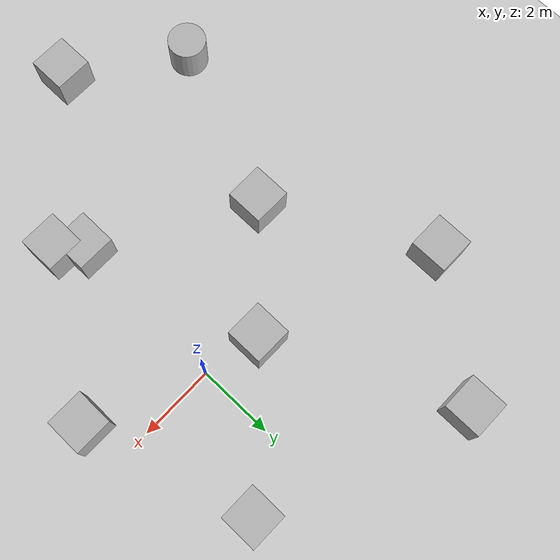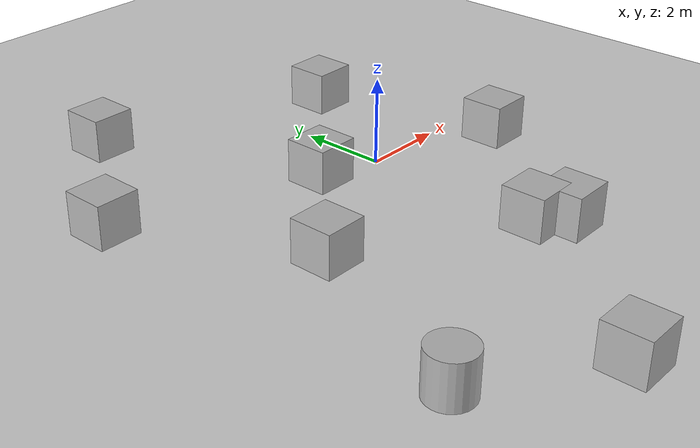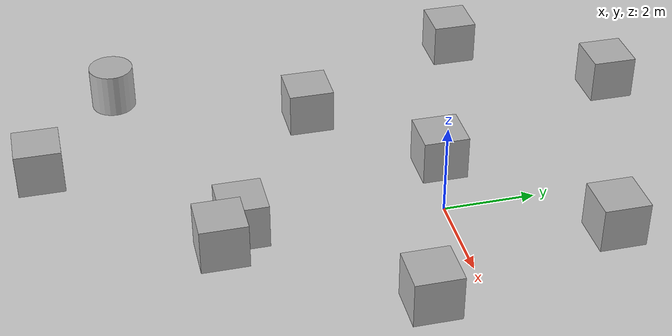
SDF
<sdf version='1.10'>
  <world name='empty'>
    <physics name='1ms' type='ignored'>
      <max_step_size>0.001</max_step_size>
      <real_time_factor>1</real_time_factor>
      <real_time_update_rate>1000</real_time_update_rate>
    </physics>
    <plugin
      filename="gz-sim-sensors-system"
      name="gz::sim::systems::Sensors">
      <render_engine>ogre2</render_engine>
    </plugin>
    <plugin name='gz::sim::systems::Physics' filename='gz-sim-physics-system'/>
    <plugin name='gz::sim::systems::UserCommands' filename='gz-sim-user-commands-system'/>
    <plugin name='gz::sim::systems::SceneBroadcaster' filename='gz-sim-scene-broadcaster-system'/>
    <plugin name='gz::sim::systems::Contact' filename='gz-sim-contact-system'/>
    <gravity>0 0 -9.8000000000000007</gravity>
    <magnetic_field>5.5644999999999998e-06 2.2875799999999999e-05 -4.2388400000000002e-05</magnetic_field>
    <atmosphere type='adiabatic'/>
    <scene>
      <ambient>0.400000006 0.400000006 0.400000006 1</ambient>
      <background>0.699999988 0.699999988 0.699999988 1</background>
      <shadows>true</shadows>
    </scene>
    <model name='ground_plane'>
      <static>true</static>
      <link name='link'>
        <collision name='collision'>
          <geometry>
            <plane>
              <normal>0 0 1</normal>
              <size>100 100</size>
            </plane>
          </geometry>
          <surface>
            <friction>
              <ode/>
            </friction>
            <bounce/>
            <contact/>
          </surface>
        </collision>
        <visual name='visual'>
          <geometry>
            <plane>
              <normal>0 0 1</normal>
              <size>100 100</size>
            </plane>
          </geometry>
          <material>
            <ambient>0.800000012 0.800000012 0.800000012 1</ambient>
            <diffuse>0.800000012 0.800000012 0.800000012 1</diffuse>
            <specular>0.800000012 0.800000012 0.800000012 1</specular>
          </material>
        </visual>
        <pose>0 0 0 0 0 0</pose>
        <inertial>
          <pose>0 0 0 0 0 0</pose>
          <mass>1</mass>
          <inertia>
            <ixx>1</ixx>
            <ixy>0</ixy>
            <ixz>0</ixz>
            <iyy>1</iyy>
            <iyz>0</iyz>
            <izz>1</izz>
          </inertia>
        </inertial>
        <enable_wind>false</enable_wind>
      </link>
      <pose>0 0 0 0 0 0</pose>
      <self_collide>false</self_collide>
    </model>
    <model name='box'>
      <pose>2.8759141512779642 -1.1564543887448879 0.5 0 0 0</pose>
      <link name='box_link'>
        <inertial>
          <inertia>
            <ixx>0.16666</ixx>
            <ixy>0</ixy>
            <ixz>0</ixz>
            <iyy>0.16666</iyy>
            <iyz>0</iyz>
            <izz>0.16666</izz>
          </inertia>
          <mass>1</mass>
          <pose>0 0 0 0 0 0</pose>
        </inertial>
        <collision name='box_collision'>
          <geometry>
            <box>
              <size>1 1 1</size>
            </box>
          </geometry>
          <surface>
            <friction>
              <ode/>
            </friction>
            <bounce/>
            <contact/>
          </surface>
        </collision>
        <visual name='box_visual'>
          <geometry>
            <box>
              <size>1 1 1</size>
            </box>
          </geometry>
          <material>
            <ambient>0.300000012 0.300000012 0.300000012 1</ambient>
            <diffuse>0.699999988 0.699999988 0.699999988 1</diffuse>
            <specular>1 1 1 1</specular>
          </material>
        </visual>
        <pose>0 0 0 0 0 0</pose>
        <enable_wind>false</enable_wind>
      </link>
      <static>false</static>
      <self_collide>false</self_collide>
    </model>
    <model name='box_0'>
      <pose>-0.13826763371025286 -4.2818056330233913 0.5 0 0 0</pose>
      <link name='box_link'>
        <inertial>
          <inertia>
            <ixx>0.16666</ixx>
            <ixy>0</ixy>
            <ixz>0</ixz>
            <iyy>0.16666</iyy>
            <iyz>0</iyz>
            <izz>0.16666</izz>
          </inertia>
          <mass>1</mass>
          <pose>0 0 0 0 0 0</pose>
        </inertial>
        <collision name='box_collision'>
          <geometry>
            <box>
              <size>1 1 1</size>
            </box>
          </geometry>
          <surface>
            <friction>
              <ode/>
            </friction>
            <bounce/>
            <contact/>
          </surface>
        </collision>
        <visual name='box_visual'>
          <geometry>
            <box>
              <size>1 1 1</size>
            </box>
          </geometry>
          <material>
            <ambient>0.300000012 0.300000012 0.300000012 1</ambient>
            <diffuse>0.699999988 0.699999988 0.699999988 1</diffuse>
            <specular>1 1 1 1</specular>
          </material>
        </visual>
        <pose>0 0 0 0 0 0</pose>
        <enable_wind>false</enable_wind>
      </link>
      <static>false</static>
      <self_collide>false</self_collide>
    </model>
    <model name='box_1'>
      <pose>1.6088577379175675 3.1472210934512894 0.5 0 0 0</pose>
      <link name='box_link'>
        <inertial>
          <inertia>
            <ixx>0.16666</ixx>
            <ixy>0</ixy>
            <ixz>0</ixz>
            <iyy>0.16666</iyy>
            <iyz>0</iyz>
            <izz>0.16666</izz>
          </inertia>
          <mass>1</mass>
          <pose>0 0 0 0 0 0</pose>
        </inertial>
        <collision name='box_collision'>
          <geometry>
            <box>
              <size>1 1 1</size>
            </box>
          </geometry>
          <surface>
            <friction>
              <ode/>
            </friction>
            <bounce/>
            <contact/>
          </surface>
        </collision>
        <visual name='box_visual'>
          <geometry>
            <box>
              <size>1 1 1</size>
            </box>
          </geometry>
          <material>
            <ambient>0.300000012 0.300000012 0.300000012 1</ambient>
            <diffuse>0.699999988 0.699999988 0.699999988 1</diffuse>
            <specular>1 1 1 1</specular>
          </material>
        </visual>
        <pose>0 0 0 0 0 0</pose>
        <enable_wind>false</enable_wind>
      </link>
      <static>false</static>
      <self_collide>false</self_collide>
    </model>
    <model name='box_2'>
      <pose>-3.001489901355793 -8.1729841114059916 0.5 0 0 0</pose>
      <link name='box_link'>
        <inertial>
          <inertia>
            <ixx>0.16666</ixx>
            <ixy>0</ixy>
            <ixz>0</ixz>
            <iyy>0.16666</iyy>
            <iyz>0</iyz>
            <izz>0.16666</izz>
          </inertia>
          <mass>1</mass>
          <pose>0 0 0 0 0 0</pose>
        </inertial>
        <collision name='box_collision'>
          <geometry>
            <box>
              <size>1 1 1</size>
            </box>
          </geometry>
          <surface>
            <friction>
              <ode/>
            </friction>
            <bounce/>
            <contact/>
          </surface>
        </collision>
        <visual name='box_visual'>
          <geometry>
            <box>
              <size>1 1 1</size>
            </box>
          </geometry>
          <material>
            <ambient>0.300000012 0.300000012 0.300000012 1</ambient>
            <diffuse>0.699999988 0.699999988 0.699999988 1</diffuse>
            <specular>1 1 1 1</specular>
          </material>
        </visual>
        <pose>0 0 0 0 0 0</pose>
        <enable_wind>false</enable_wind>
      </link>
      <static>false</static>
      <self_collide>false</self_collide>
    </model>
    <model name='box_3'>
      <pose>-3.9430426734323047 -2.0544102903357979 0.5 0 0 0</pose>
      <link name='box_link'>
        <inertial>
          <inertia>
            <ixx>0.16666</ixx>
            <ixy>0</ixy>
            <ixz>0</ixz>
            <iyy>0.16666</iyy>
            <iyz>0</iyz>
            <izz>0.16666</izz>
          </inertia>
          <mass>1</mass>
          <pose>0 0 0 0 0 0</pose>
        </inertial>
        <collision name='box_collision'>
          <geometry>
            <box>
              <size>1 1 1</size>
            </box>
          </geometry>
          <surface>
            <friction>
              <ode/>
            </friction>
            <bounce/>
            <contact/>
          </surface>
        </collision>
        <visual name='box_visual'>
          <geometry>
            <box>
              <size>1 1 1</size>
            </box>
          </geometry>
          <material>
            <ambient>0.300000012 0.300000012 0.300000012 1</ambient>
            <diffuse>0.699999988 0.699999988 0.699999988 1</diffuse>
            <specular>1 1 1 1</specular>
          </material>
        </visual>
        <pose>0 0 0 0 0 0</pose>
        <enable_wind>false</enable_wind>
      </link>
      <static>false</static>
      <self_collide>false</self_collide>
    </model>
    <model name='box_4'>
      <pose>0.39336888827032523 -4.7966736152993601 0.5 0 0 0</pose>
      <link name='box_link'>
        <inertial>
          <inertia>
            <ixx>0.16666</ixx>
            <ixy>0</ixy>
            <ixz>0</ixz>
            <iyy>0.16666</iyy>
            <iyz>0</iyz>
            <izz>0.16666</izz>
          </inertia>
          <mass>1</mass>
          <pose>0 0 0 0 0 0</pose>
        </inertial>
        <collision name='box_collision'>
          <geometry>
            <box>
              <size>1 1 1</size>
            </box>
          </geometry>
          <surface>
            <friction>
              <ode/>
            </friction>
            <bounce/>
            <contact/>
          </surface>
        </collision>
        <visual name='box_visual'>
          <geometry>
            <box>
              <size>1 1 1</size>
            </box>
          </geometry>
          <material>
            <ambient>0.300000012 0.300000012 0.300000012 1</ambient>
            <diffuse>0.699999988 0.699999988 0.699999988 1</diffuse>
            <specular>1 1 1 1</specular>
          </material>
        </visual>
        <pose>0 0 0 0 0 0</pose>
        <enable_wind>false</enable_wind>
      </link>
      <static>false</static>
      <self_collide>false</self_collide>
    </model>
    <model name='box_5'>
      <pose>-1.4704350042163632 0.340064528973687 0.5 0 0 0</pose>
      <link name='box_link'>
        <inertial>
          <inertia>
            <ixx>0.16666</ixx>
            <ixy>0</ixy>
            <ixz>0</ixz>
            <iyy>0.16666</iyy>
            <iyz>0</iyz>
            <izz>0.16666</izz>
          </inertia>
          <mass>1</mass>
          <pose>0 0 0 0 0 0</pose>
        </inertial>
        <collision name='box_collision'>
          <geometry>
            <box>
              <size>1 1 1</size>
            </box>
          </geometry>
          <surface>
            <friction>
              <ode/>
            </friction>
            <bounce/>
            <contact/>
          </surface>
        </collision>
        <visual name='box_visual'>
          <geometry>
            <box>
              <size>1 1 1</size>
            </box>
          </geometry>
          <material>
            <ambient>0.300000012 0.300000012 0.300000012 1</ambient>
            <diffuse>0.699999988 0.699999988 0.699999988 1</diffuse>
            <specular>1 1 1 1</specular>
          </material>
        </visual>
        <pose>0 0 0 0 0 0</pose>
        <enable_wind>false</enable_wind>
      </link>
      <static>false</static>
      <self_collide>false</self_collide>
    </model>
    <model name='box_6'>
      <pose>-6.119124422411808 1.9989719237809671 0.5 0 0 0</pose>
      <link name='box_link'>
        <inertial>
          <inertia>
            <ixx>0.16666</ixx>
            <ixy>0</ixy>
            <ixz>0</ixz>
            <iyy>0.16666</iyy>
            <iyz>0</iyz>
            <izz>0.16666</izz>
          </inertia>
          <mass>1</mass>
          <pose>0 0 0 0 0 0</pose>
        </inertial>
        <collision name='box_collision'>
          <geometry>
            <box>
              <size>1 1 1</size>
            </box>
          </geometry>
          <surface>
            <friction>
              <ode/>
            </friction>
            <bounce/>
            <contact/>
          </surface>
        </collision>
        <visual name='box_visual'>
          <geometry>
            <box>
              <size>1 1 1</size>
            </box>
          </geometry>
          <material>
            <ambient>0.300000012 0.300000012 0.300000012 1</ambient>
            <diffuse>0.699999988 0.699999988 0.699999988 1</diffuse>
            <specular>1 1 1 1</specular>
          </material>
        </visual>
        <pose>0 0 0 0 0 0</pose>
        <enable_wind>false</enable_wind>
      </link>
      <static>false</static>
      <self_collide>false</self_collide>
    </model>
    <model name='box_7'>
      <pose>-3.6952674334681728 5.1144238407926501 0.5 0 0 0</pose>
      <link name='box_link'>
        <inertial>
          <inertia>
            <ixx>0.16666</ixx>
            <ixy>0</ixy>
            <ixz>0</ixz>
            <iyy>0.16666</iyy>
            <iyz>0</iyz>
            <izz>0.16666</izz>
          </inertia>
          <mass>1</mass>
          <pose>0 0 0 0 0 0</pose>
        </inertial>
        <collision name='box_collision'>
          <geometry>
            <box>
              <size>1 1 1</size>
            </box>
          </geometry>
          <surface>
            <friction>
              <ode/>
            </friction>
            <bounce/>
            <contact/>
          </surface>
        </collision>
        <visual name='box_visual'>
          <geometry>
            <box>
              <size>1 1 1</size>
            </box>
          </geometry>
          <material>
            <ambient>0.300000012 0.300000012 0.300000012 1</ambient>
            <diffuse>0.699999988 0.699999988 0.699999988 1</diffuse>
            <specular>1 1 1 1</specular>
          </material>
        </visual>
        <pose>0 0 0 0 0 0</pose>
        <enable_wind>false</enable_wind>
      </link>
      <static>false</static>
      <self_collide>false</self_collide>
    </model>
    <model name='cylinder'>
      <pose>-5.7021973787198768 -6.3074970561170076 0.5 0 0 0</pose>
      <link name='cylinder_link'>
        <inertial>
          <inertia>
            <ixx>0.14580000000000001</ixx>
            <ixy>0</ixy>
            <ixz>0</ixz>
            <iyy>0.14580000000000001</iyy>
            <iyz>0</iyz>
            <izz>0.125</izz>
          </inertia>
          <mass>1</mass>
          <pose>0 0 0 0 0 0</pose>
        </inertial>
        <collision name='cylinder_collision'>
          <geometry>
            <cylinder>
              <radius>0.5</radius>
              <length>1</length>
            </cylinder>
          </geometry>
          <surface>
            <friction>
              <ode/>
            </friction>
            <bounce/>
            <contact/>
          </surface>
        </collision>
        <visual name='cylinder_visual'>
          <geometry>
            <cylinder>
              <radius>0.5</radius>
              <length>1</length>
            </cylinder>
          </geometry>
          <material>
            <ambient>0.300000012 0.300000012 0.300000012 1</ambient>
            <diffuse>0.699999988 0.699999988 0.699999988 1</diffuse>
            <specular>1 1 1 1</specular>
          </material>
        </visual>
        <pose>0 0 0 0 0 0</pose>
        <enable_wind>false</enable_wind>
      </link>
      <static>false</static>
      <self_collide>false</self_collide>
    </model>
    <light name='sun' type='directional'>
      <pose>0 0 10 0 0 0</pose>
      <cast_shadows>true</cast_shadows>
      <intensity>1</intensity>
      <direction>-0.5 0.10000000000000001 -0.90000000000000002</direction>
      <diffuse>0.800000012 0.800000012 0.800000012 1</diffuse>
      <specular>0.200000003 0.200000003 0.200000003 1</specular>
      <attenuation>
        <range>1000</range>
        <linear>0.01</linear>
        <constant>0.90000000000000002</constant>
        <quadratic>0.001</quadratic>
      </attenuation>
      <spot>
        <inner_angle>0</inner_angle>
        <outer_angle>0</outer_angle>
        <falloff>0</falloff>
      </spot>
    </light>
  </world>
</sdf>
